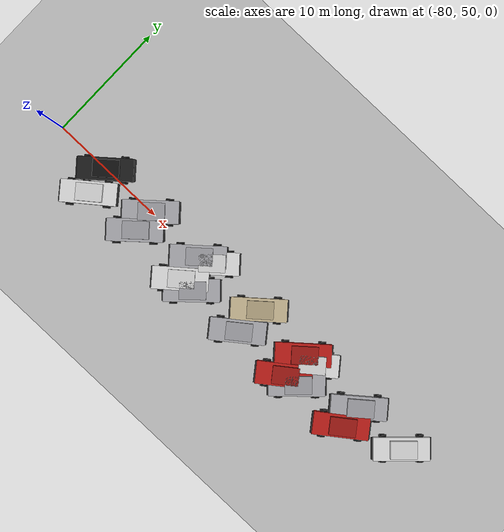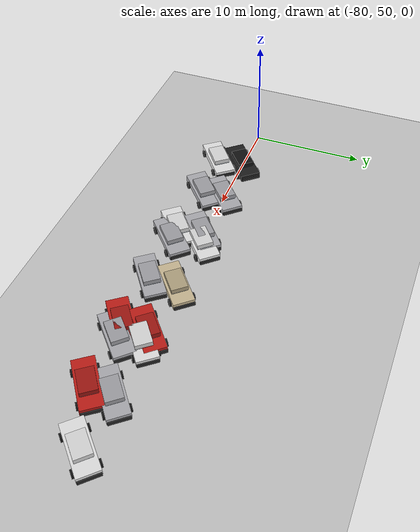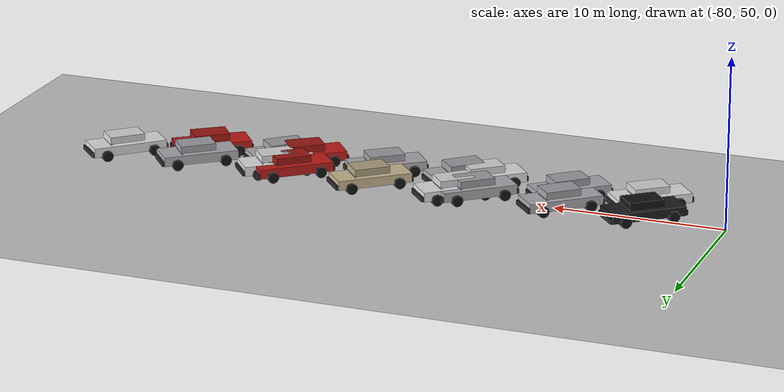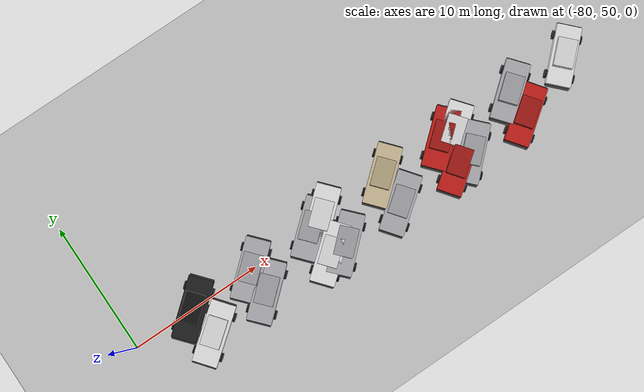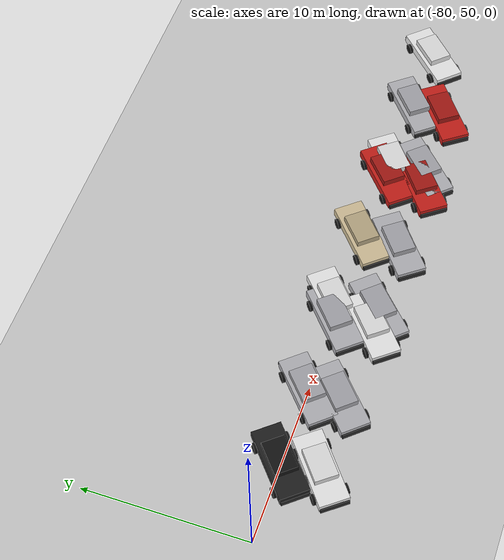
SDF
<sdf version="1.6">
 <world name="parking_lot">
  <model name="ground_plane">
   <static>true</static>
   <link name="link">
    <collision name="collision">
     <geometry><plane><normal>0 0 1</normal><size>400 300</size></plane></geometry>
     <surface><friction><ode><mu>0.8</mu><mu2>0.8</mu2></ode></friction></surface>
    </collision>
    <visual name="visual">
     <cast_shadows>false</cast_shadows>
     <geometry><plane><normal>0 0 1</normal><size>400 300</size></plane></geometry>
     <material>
      <script><uri>file://media/materials/scripts/gazebo.material</uri><name>Gazebo/Grey</name></script>
      <ambient>0.28 0.28 0.27 1</ambient>
      <diffuse>0.32 0.32 0.30 1</diffuse>
      <specular>0.01 0.01 0.01 1</specular>
     </material>
    </visual>
   </link>
  </model>
  <model name="car_0000">
   <static>true</static>
   <pose>-74.930 47.763 0 0 0 0.6667</pose>
   <link name="body">
    <visual name="body_vis">
     <pose>0 0 0.55 0 0 0</pose>
     <geometry><box><size>4.45 1.80 0.55</size></box></geometry>
     <material>
      <ambient>0.15 0.15 0.15 1</ambient>
      <diffuse>0.92 0.92 0.92 1</diffuse>
      <specular>0.4 0.4 0.4 1</specular>
     </material>
    </visual>
    <visual name="roof_vis">
     <pose>0.10 0 1.12 0 0 0</pose>
     <geometry><box><size>2.10 1.40 0.40</size></box></geometry>
     <material>
      <ambient>0.10 0.10 0.10 1</ambient>
      <diffuse>0.88 0.88 0.88 1</diffuse>
      <specular>0.5 0.5 0.5 1</specular>
     </material>
    </visual>
    <visual name="glass_f">
     <pose>1.02 0 0.95 0 -0.45 0</pose>
     <geometry><box><size>0.05 1.35 0.38</size></box></geometry>
     <material><diffuse>0.50 0.60 0.70 0.6</diffuse></material>
    </visual>
    <visual name="bumper_f">
     <pose>2.28 0 0.42 0 0 0</pose>
     <geometry><box><size>0.12 1.72 0.28</size></box></geometry>
     <material><diffuse>0.18 0.18 0.18 1</diffuse></material>
    </visual>
    <visual name="bumper_r">
     <pose>-2.28 0 0.42 0 0 0</pose>
     <geometry><box><size>0.12 1.72 0.28</size></box></geometry>
     <material><diffuse>0.18 0.18 0.18 1</diffuse></material>
    </visual>
    <visual name="wfl">
     <pose>1.45 0.85 0.32 1.5708 0 0</pose>
     <geometry><cylinder><radius>0.32</radius><length>0.44</length></cylinder></geometry>
     <material><diffuse>0.08 0.08 0.08 1</diffuse></material>
    </visual>
    <visual name="wfr">
     <pose>1.45 -0.85 0.32 1.5708 0 0</pose>
     <geometry><cylinder><radius>0.32</radius><length>0.44</length></cylinder></geometry>
     <material><diffuse>0.08 0.08 0.08 1</diffuse></material>
    </visual>
    <visual name="wrl">
     <pose>-1.45 0.85 0.32 1.5708 0 0</pose>
     <geometry><cylinder><radius>0.32</radius><length>0.44</length></cylinder></geometry>
     <material><diffuse>0.08 0.08 0.08 1</diffuse></material>
    </visual>
    <visual name="wrr">
     <pose>-1.45 -0.85 0.32 1.5708 0 0</pose>
     <geometry><cylinder><radius>0.32</radius><length>0.44</length></cylinder></geometry>
     <material><diffuse>0.08 0.08 0.08 1</diffuse></material>
    </visual>
    <collision name="col">
     <pose>0 0 0.55 0 0 0</pose>
     <geometry><box><size>4.45 1.80 1.30</size></box></geometry>
    </collision>
   </link>
  </model>
  <model name="car_0001">
   <static>true</static>
   <pose>-70.288 48.118 0 0 0 0.7228</pose>
   <link name="body">
    <visual name="body_vis">
     <pose>0 0 0.55 0 0 0</pose>
     <geometry><box><size>4.45 1.80 0.55</size></box></geometry>
     <material>
      <ambient>0.15 0.15 0.15 1</ambient>
      <diffuse>0.70 0.70 0.72 1</diffuse>
      <specular>0.4 0.4 0.4 1</specular>
     </material>
    </visual>
    <visual name="roof_vis">
     <pose>0.10 0 1.12 0 0 0</pose>
     <geometry><box><size>2.10 1.40 0.40</size></box></geometry>
     <material>
      <ambient>0.10 0.10 0.10 1</ambient>
      <diffuse>0.65 0.65 0.67 1</diffuse>
      <specular>0.5 0.5 0.5 1</specular>
     </material>
    </visual>
    <visual name="glass_f">
     <pose>1.02 0 0.95 0 -0.45 0</pose>
     <geometry><box><size>0.05 1.35 0.38</size></box></geometry>
     <material><diffuse>0.50 0.60 0.70 0.6</diffuse></material>
    </visual>
    <visual name="bumper_f">
     <pose>2.28 0 0.42 0 0 0</pose>
     <geometry><box><size>0.12 1.72 0.28</size></box></geometry>
     <material><diffuse>0.18 0.18 0.18 1</diffuse></material>
    </visual>
    <visual name="bumper_r">
     <pose>-2.28 0 0.42 0 0 0</pose>
     <geometry><box><size>0.12 1.72 0.28</size></box></geometry>
     <material><diffuse>0.18 0.18 0.18 1</diffuse></material>
    </visual>
    <visual name="wfl">
     <pose>1.45 0.85 0.32 1.5708 0 0</pose>
     <geometry><cylinder><radius>0.32</radius><length>0.44</length></cylinder></geometry>
     <material><diffuse>0.08 0.08 0.08 1</diffuse></material>
    </visual>
    <visual name="wfr">
     <pose>1.45 -0.85 0.32 1.5708 0 0</pose>
     <geometry><cylinder><radius>0.32</radius><length>0.44</length></cylinder></geometry>
     <material><diffuse>0.08 0.08 0.08 1</diffuse></material>
    </visual>
    <visual name="wrl">
     <pose>-1.45 0.85 0.32 1.5708 0 0</pose>
     <geometry><cylinder><radius>0.32</radius><length>0.44</length></cylinder></geometry>
     <material><diffuse>0.08 0.08 0.08 1</diffuse></material>
    </visual>
    <visual name="wrr">
     <pose>-1.45 -0.85 0.32 1.5708 0 0</pose>
     <geometry><cylinder><radius>0.32</radius><length>0.44</length></cylinder></geometry>
     <material><diffuse>0.08 0.08 0.08 1</diffuse></material>
    </visual>
    <collision name="col">
     <pose>0 0 0.55 0 0 0</pose>
     <geometry><box><size>4.45 1.80 1.30</size></box></geometry>
    </collision>
   </link>
  </model>
  <model name="car_0002">
   <static>true</static>
   <pose>-65.104 47.793 0 0 0 0.6872</pose>
   <link name="body">
    <visual name="body_vis">
     <pose>0 0 0.55 0 0 0</pose>
     <geometry><box><size>4.45 1.80 0.55</size></box></geometry>
     <material>
      <ambient>0.15 0.15 0.15 1</ambient>
      <diffuse>0.92 0.92 0.92 1</diffuse>
      <specular>0.4 0.4 0.4 1</specular>
     </material>
    </visual>
    <visual name="roof_vis">
     <pose>0.10 0 1.12 0 0 0</pose>
     <geometry><box><size>2.10 1.40 0.40</size></box></geometry>
     <material>
      <ambient>0.10 0.10 0.10 1</ambient>
      <diffuse>0.88 0.88 0.88 1</diffuse>
      <specular>0.5 0.5 0.5 1</specular>
     </material>
    </visual>
    <visual name="glass_f">
     <pose>1.02 0 0.95 0 -0.45 0</pose>
     <geometry><box><size>0.05 1.35 0.38</size></box></geometry>
     <material><diffuse>0.50 0.60 0.70 0.6</diffuse></material>
    </visual>
    <visual name="bumper_f">
     <pose>2.28 0 0.42 0 0 0</pose>
     <geometry><box><size>0.12 1.72 0.28</size></box></geometry>
     <material><diffuse>0.18 0.18 0.18 1</diffuse></material>
    </visual>
    <visual name="bumper_r">
     <pose>-2.28 0 0.42 0 0 0</pose>
     <geometry><box><size>0.12 1.72 0.28</size></box></geometry>
     <material><diffuse>0.18 0.18 0.18 1</diffuse></material>
    </visual>
    <visual name="wfl">
     <pose>1.45 0.85 0.32 1.5708 0 0</pose>
     <geometry><cylinder><radius>0.32</radius><length>0.44</length></cylinder></geometry>
     <material><diffuse>0.08 0.08 0.08 1</diffuse></material>
    </visual>
    <visual name="wfr">
     <pose>1.45 -0.85 0.32 1.5708 0 0</pose>
     <geometry><cylinder><radius>0.32</radius><length>0.44</length></cylinder></geometry>
     <material><diffuse>0.08 0.08 0.08 1</diffuse></material>
    </visual>
    <visual name="wrl">
     <pose>-1.45 0.85 0.32 1.5708 0 0</pose>
     <geometry><cylinder><radius>0.32</radius><length>0.44</length></cylinder></geometry>
     <material><diffuse>0.08 0.08 0.08 1</diffuse></material>
    </visual>
    <visual name="wrr">
     <pose>-1.45 -0.85 0.32 1.5708 0 0</pose>
     <geometry><cylinder><radius>0.32</radius><length>0.44</length></cylinder></geometry>
     <material><diffuse>0.08 0.08 0.08 1</diffuse></material>
    </visual>
    <collision name="col">
     <pose>0 0 0.55 0 0 0</pose>
     <geometry><box><size>4.45 1.80 1.30</size></box></geometry>
    </collision>
   </link>
  </model>
  <model name="car_0003">
   <static>true</static>
   <pose>-75.235 50.009 0 0 0 0.6989</pose>
   <link name="body">
    <visual name="body_vis">
     <pose>0 0 0.55 0 0 0</pose>
     <geometry><box><size>4.45 1.80 0.55</size></box></geometry>
     <material>
      <ambient>0.15 0.15 0.15 1</ambient>
      <diffuse>0.12 0.12 0.12 1</diffuse>
      <specular>0.4 0.4 0.4 1</specular>
     </material>
    </visual>
    <visual name="roof_vis">
     <pose>0.10 0 1.12 0 0 0</pose>
     <geometry><box><size>2.10 1.40 0.40</size></box></geometry>
     <material>
      <ambient>0.10 0.10 0.10 1</ambient>
      <diffuse>0.08 0.08 0.08 1</diffuse>
      <specular>0.5 0.5 0.5 1</specular>
     </material>
    </visual>
    <visual name="glass_f">
     <pose>1.02 0 0.95 0 -0.45 0</pose>
     <geometry><box><size>0.05 1.35 0.38</size></box></geometry>
     <material><diffuse>0.50 0.60 0.70 0.6</diffuse></material>
    </visual>
    <visual name="bumper_f">
     <pose>2.28 0 0.42 0 0 0</pose>
     <geometry><box><size>0.12 1.72 0.28</size></box></geometry>
     <material><diffuse>0.18 0.18 0.18 1</diffuse></material>
    </visual>
    <visual name="bumper_r">
     <pose>-2.28 0 0.42 0 0 0</pose>
     <geometry><box><size>0.12 1.72 0.28</size></box></geometry>
     <material><diffuse>0.18 0.18 0.18 1</diffuse></material>
    </visual>
    <visual name="wfl">
     <pose>1.45 0.85 0.32 1.5708 0 0</pose>
     <geometry><cylinder><radius>0.32</radius><length>0.44</length></cylinder></geometry>
     <material><diffuse>0.08 0.08 0.08 1</diffuse></material>
    </visual>
    <visual name="wfr">
     <pose>1.45 -0.85 0.32 1.5708 0 0</pose>
     <geometry><cylinder><radius>0.32</radius><length>0.44</length></cylinder></geometry>
     <material><diffuse>0.08 0.08 0.08 1</diffuse></material>
    </visual>
    <visual name="wrl">
     <pose>-1.45 0.85 0.32 1.5708 0 0</pose>
     <geometry><cylinder><radius>0.32</radius><length>0.44</length></cylinder></geometry>
     <material><diffuse>0.08 0.08 0.08 1</diffuse></material>
    </visual>
    <visual name="wrr">
     <pose>-1.45 -0.85 0.32 1.5708 0 0</pose>
     <geometry><cylinder><radius>0.32</radius><length>0.44</length></cylinder></geometry>
     <material><diffuse>0.08 0.08 0.08 1</diffuse></material>
    </visual>
    <collision name="col">
     <pose>0 0 0.55 0 0 0</pose>
     <geometry><box><size>4.45 1.80 1.30</size></box></geometry>
    </collision>
   </link>
  </model>
  <model name="car_0004">
   <static>true</static>
   <pose>-70.387 49.999 0 0 0 0.7191</pose>
   <link name="body">
    <visual name="body_vis">
     <pose>0 0 0.55 0 0 0</pose>
     <geometry><box><size>4.45 1.80 0.55</size></box></geometry>
     <material>
      <ambient>0.15 0.15 0.15 1</ambient>
      <diffuse>0.70 0.70 0.72 1</diffuse>
      <specular>0.4 0.4 0.4 1</specular>
     </material>
    </visual>
    <visual name="roof_vis">
     <pose>0.10 0 1.12 0 0 0</pose>
     <geometry><box><size>2.10 1.40 0.40</size></box></geometry>
     <material>
      <ambient>0.10 0.10 0.10 1</ambient>
      <diffuse>0.65 0.65 0.67 1</diffuse>
      <specular>0.5 0.5 0.5 1</specular>
     </material>
    </visual>
    <visual name="glass_f">
     <pose>1.02 0 0.95 0 -0.45 0</pose>
     <geometry><box><size>0.05 1.35 0.38</size></box></geometry>
     <material><diffuse>0.50 0.60 0.70 0.6</diffuse></material>
    </visual>
    <visual name="bumper_f">
     <pose>2.28 0 0.42 0 0 0</pose>
     <geometry><box><size>0.12 1.72 0.28</size></box></geometry>
     <material><diffuse>0.18 0.18 0.18 1</diffuse></material>
    </visual>
    <visual name="bumper_r">
     <pose>-2.28 0 0.42 0 0 0</pose>
     <geometry><box><size>0.12 1.72 0.28</size></box></geometry>
     <material><diffuse>0.18 0.18 0.18 1</diffuse></material>
    </visual>
    <visual name="wfl">
     <pose>1.45 0.85 0.32 1.5708 0 0</pose>
     <geometry><cylinder><radius>0.32</radius><length>0.44</length></cylinder></geometry>
     <material><diffuse>0.08 0.08 0.08 1</diffuse></material>
    </visual>
    <visual name="wfr">
     <pose>1.45 -0.85 0.32 1.5708 0 0</pose>
     <geometry><cylinder><radius>0.32</radius><length>0.44</length></cylinder></geometry>
     <material><diffuse>0.08 0.08 0.08 1</diffuse></material>
    </visual>
    <visual name="wrl">
     <pose>-1.45 0.85 0.32 1.5708 0 0</pose>
     <geometry><cylinder><radius>0.32</radius><length>0.44</length></cylinder></geometry>
     <material><diffuse>0.08 0.08 0.08 1</diffuse></material>
    </visual>
    <visual name="wrr">
     <pose>-1.45 -0.85 0.32 1.5708 0 0</pose>
     <geometry><cylinder><radius>0.32</radius><length>0.44</length></cylinder></geometry>
     <material><diffuse>0.08 0.08 0.08 1</diffuse></material>
    </visual>
    <collision name="col">
     <pose>0 0 0.55 0 0 0</pose>
     <geometry><box><size>4.45 1.80 1.30</size></box></geometry>
    </collision>
   </link>
  </model>
  <model name="car_0005">
   <static>true</static>
   <pose>-65.278 50.010 0 0 0 0.7106</pose>
   <link name="body">
    <visual name="body_vis">
     <pose>0 0 0.55 0 0 0</pose>
     <geometry><box><size>4.45 1.80 0.55</size></box></geometry>
     <material>
      <ambient>0.15 0.15 0.15 1</ambient>
      <diffuse>0.70 0.70 0.72 1</diffuse>
      <specular>0.4 0.4 0.4 1</specular>
     </material>
    </visual>
    <visual name="roof_vis">
     <pose>0.10 0 1.12 0 0 0</pose>
     <geometry><box><size>2.10 1.40 0.40</size></box></geometry>
     <material>
      <ambient>0.10 0.10 0.10 1</ambient>
      <diffuse>0.65 0.65 0.67 1</diffuse>
      <specular>0.5 0.5 0.5 1</specular>
     </material>
    </visual>
    <visual name="glass_f">
     <pose>1.02 0 0.95 0 -0.45 0</pose>
     <geometry><box><size>0.05 1.35 0.38</size></box></geometry>
     <material><diffuse>0.50 0.60 0.70 0.6</diffuse></material>
    </visual>
    <visual name="bumper_f">
     <pose>2.28 0 0.42 0 0 0</pose>
     <geometry><box><size>0.12 1.72 0.28</size></box></geometry>
     <material><diffuse>0.18 0.18 0.18 1</diffuse></material>
    </visual>
    <visual name="bumper_r">
     <pose>-2.28 0 0.42 0 0 0</pose>
     <geometry><box><size>0.12 1.72 0.28</size></box></geometry>
     <material><diffuse>0.18 0.18 0.18 1</diffuse></material>
    </visual>
    <visual name="wfl">
     <pose>1.45 0.85 0.32 1.5708 0 0</pose>
     <geometry><cylinder><radius>0.32</radius><length>0.44</length></cylinder></geometry>
     <material><diffuse>0.08 0.08 0.08 1</diffuse></material>
    </visual>
    <visual name="wfr">
     <pose>1.45 -0.85 0.32 1.5708 0 0</pose>
     <geometry><cylinder><radius>0.32</radius><length>0.44</length></cylinder></geometry>
     <material><diffuse>0.08 0.08 0.08 1</diffuse></material>
    </visual>
    <visual name="wrl">
     <pose>-1.45 0.85 0.32 1.5708 0 0</pose>
     <geometry><cylinder><radius>0.32</radius><length>0.44</length></cylinder></geometry>
     <material><diffuse>0.08 0.08 0.08 1</diffuse></material>
    </visual>
    <visual name="wrr">
     <pose>-1.45 -0.85 0.32 1.5708 0 0</pose>
     <geometry><cylinder><radius>0.32</radius><length>0.44</length></cylinder></geometry>
     <material><diffuse>0.08 0.08 0.08 1</diffuse></material>
    </visual>
    <collision name="col">
     <pose>0 0 0.55 0 0 0</pose>
     <geometry><box><size>4.45 1.80 1.30</size></box></geometry>
    </collision>
   </link>
  </model>
  <model name="car_0006">
   <static>true</static>
   <pose>-63.845 47.753 0 0 0 0.7408</pose>
   <link name="body">
    <visual name="body_vis">
     <pose>0 0 0.55 0 0 0</pose>
     <geometry><box><size>4.45 1.80 0.55</size></box></geometry>
     <material>
      <ambient>0.15 0.15 0.15 1</ambient>
      <diffuse>0.70 0.70 0.72 1</diffuse>
      <specular>0.4 0.4 0.4 1</specular>
     </material>
    </visual>
    <visual name="roof_vis">
     <pose>0.10 0 1.12 0 0 0</pose>
     <geometry><box><size>2.10 1.40 0.40</size></box></geometry>
     <material>
      <ambient>0.10 0.10 0.10 1</ambient>
      <diffuse>0.65 0.65 0.67 1</diffuse>
      <specular>0.5 0.5 0.5 1</specular>
     </material>
    </visual>
    <visual name="glass_f">
     <pose>1.02 0 0.95 0 -0.45 0</pose>
     <geometry><box><size>0.05 1.35 0.38</size></box></geometry>
     <material><diffuse>0.50 0.60 0.70 0.6</diffuse></material>
    </visual>
    <visual name="bumper_f">
     <pose>2.28 0 0.42 0 0 0</pose>
     <geometry><box><size>0.12 1.72 0.28</size></box></geometry>
     <material><diffuse>0.18 0.18 0.18 1</diffuse></material>
    </visual>
    <visual name="bumper_r">
     <pose>-2.28 0 0.42 0 0 0</pose>
     <geometry><box><size>0.12 1.72 0.28</size></box></geometry>
     <material><diffuse>0.18 0.18 0.18 1</diffuse></material>
    </visual>
    <visual name="wfl">
     <pose>1.45 0.85 0.32 1.5708 0 0</pose>
     <geometry><cylinder><radius>0.32</radius><length>0.44</length></cylinder></geometry>
     <material><diffuse>0.08 0.08 0.08 1</diffuse></material>
    </visual>
    <visual name="wfr">
     <pose>1.45 -0.85 0.32 1.5708 0 0</pose>
     <geometry><cylinder><radius>0.32</radius><length>0.44</length></cylinder></geometry>
     <material><diffuse>0.08 0.08 0.08 1</diffuse></material>
    </visual>
    <visual name="wrl">
     <pose>-1.45 0.85 0.32 1.5708 0 0</pose>
     <geometry><cylinder><radius>0.32</radius><length>0.44</length></cylinder></geometry>
     <material><diffuse>0.08 0.08 0.08 1</diffuse></material>
    </visual>
    <visual name="wrr">
     <pose>-1.45 -0.85 0.32 1.5708 0 0</pose>
     <geometry><cylinder><radius>0.32</radius><length>0.44</length></cylinder></geometry>
     <material><diffuse>0.08 0.08 0.08 1</diffuse></material>
    </visual>
    <collision name="col">
     <pose>0 0 0.55 0 0 0</pose>
     <geometry><box><size>4.45 1.80 1.30</size></box></geometry>
    </collision>
   </link>
  </model>
  <model name="car_0007">
   <static>true</static>
   <pose>-59.051 47.920 0 0 0 0.6500</pose>
   <link name="body">
    <visual name="body_vis">
     <pose>0 0 0.55 0 0 0</pose>
     <geometry><box><size>4.45 1.80 0.55</size></box></geometry>
     <material>
      <ambient>0.15 0.15 0.15 1</ambient>
      <diffuse>0.70 0.70 0.72 1</diffuse>
      <specular>0.4 0.4 0.4 1</specular>
     </material>
    </visual>
    <visual name="roof_vis">
     <pose>0.10 0 1.12 0 0 0</pose>
     <geometry><box><size>2.10 1.40 0.40</size></box></geometry>
     <material>
      <ambient>0.10 0.10 0.10 1</ambient>
      <diffuse>0.65 0.65 0.67 1</diffuse>
      <specular>0.5 0.5 0.5 1</specular>
     </material>
    </visual>
    <visual name="glass_f">
     <pose>1.02 0 0.95 0 -0.45 0</pose>
     <geometry><box><size>0.05 1.35 0.38</size></box></geometry>
     <material><diffuse>0.50 0.60 0.70 0.6</diffuse></material>
    </visual>
    <visual name="bumper_f">
     <pose>2.28 0 0.42 0 0 0</pose>
     <geometry><box><size>0.12 1.72 0.28</size></box></geometry>
     <material><diffuse>0.18 0.18 0.18 1</diffuse></material>
    </visual>
    <visual name="bumper_r">
     <pose>-2.28 0 0.42 0 0 0</pose>
     <geometry><box><size>0.12 1.72 0.28</size></box></geometry>
     <material><diffuse>0.18 0.18 0.18 1</diffuse></material>
    </visual>
    <visual name="wfl">
     <pose>1.45 0.85 0.32 1.5708 0 0</pose>
     <geometry><cylinder><radius>0.32</radius><length>0.44</length></cylinder></geometry>
     <material><diffuse>0.08 0.08 0.08 1</diffuse></material>
    </visual>
    <visual name="wfr">
     <pose>1.45 -0.85 0.32 1.5708 0 0</pose>
     <geometry><cylinder><radius>0.32</radius><length>0.44</length></cylinder></geometry>
     <material><diffuse>0.08 0.08 0.08 1</diffuse></material>
    </visual>
    <visual name="wrl">
     <pose>-1.45 0.85 0.32 1.5708 0 0</pose>
     <geometry><cylinder><radius>0.32</radius><length>0.44</length></cylinder></geometry>
     <material><diffuse>0.08 0.08 0.08 1</diffuse></material>
    </visual>
    <visual name="wrr">
     <pose>-1.45 -0.85 0.32 1.5708 0 0</pose>
     <geometry><cylinder><radius>0.32</radius><length>0.44</length></cylinder></geometry>
     <material><diffuse>0.08 0.08 0.08 1</diffuse></material>
    </visual>
    <collision name="col">
     <pose>0 0 0.55 0 0 0</pose>
     <geometry><box><size>4.45 1.80 1.30</size></box></geometry>
    </collision>
   </link>
  </model>
  <model name="car_0008">
   <static>true</static>
   <pose>-54.071 47.918 0 0 0 0.6413</pose>
   <link name="body">
    <visual name="body_vis">
     <pose>0 0 0.55 0 0 0</pose>
     <geometry><box><size>4.45 1.80 0.55</size></box></geometry>
     <material>
      <ambient>0.15 0.15 0.15 1</ambient>
      <diffuse>0.78 0.12 0.10 1</diffuse>
      <specular>0.4 0.4 0.4 1</specular>
     </material>
    </visual>
    <visual name="roof_vis">
     <pose>0.10 0 1.12 0 0 0</pose>
     <geometry><box><size>2.10 1.40 0.40</size></box></geometry>
     <material>
      <ambient>0.10 0.10 0.10 1</ambient>
      <diffuse>0.65 0.10 0.08 1</diffuse>
      <specular>0.5 0.5 0.5 1</specular>
     </material>
    </visual>
    <visual name="glass_f">
     <pose>1.02 0 0.95 0 -0.45 0</pose>
     <geometry><box><size>0.05 1.35 0.38</size></box></geometry>
     <material><diffuse>0.50 0.60 0.70 0.6</diffuse></material>
    </visual>
    <visual name="bumper_f">
     <pose>2.28 0 0.42 0 0 0</pose>
     <geometry><box><size>0.12 1.72 0.28</size></box></geometry>
     <material><diffuse>0.18 0.18 0.18 1</diffuse></material>
    </visual>
    <visual name="bumper_r">
     <pose>-2.28 0 0.42 0 0 0</pose>
     <geometry><box><size>0.12 1.72 0.28</size></box></geometry>
     <material><diffuse>0.18 0.18 0.18 1</diffuse></material>
    </visual>
    <visual name="wfl">
     <pose>1.45 0.85 0.32 1.5708 0 0</pose>
     <geometry><cylinder><radius>0.32</radius><length>0.44</length></cylinder></geometry>
     <material><diffuse>0.08 0.08 0.08 1</diffuse></material>
    </visual>
    <visual name="wfr">
     <pose>1.45 -0.85 0.32 1.5708 0 0</pose>
     <geometry><cylinder><radius>0.32</radius><length>0.44</length></cylinder></geometry>
     <material><diffuse>0.08 0.08 0.08 1</diffuse></material>
    </visual>
    <visual name="wrl">
     <pose>-1.45 0.85 0.32 1.5708 0 0</pose>
     <geometry><cylinder><radius>0.32</radius><length>0.44</length></cylinder></geometry>
     <material><diffuse>0.08 0.08 0.08 1</diffuse></material>
    </visual>
    <visual name="wrr">
     <pose>-1.45 -0.85 0.32 1.5708 0 0</pose>
     <geometry><cylinder><radius>0.32</radius><length>0.44</length></cylinder></geometry>
     <material><diffuse>0.08 0.08 0.08 1</diffuse></material>
    </visual>
    <collision name="col">
     <pose>0 0 0.55 0 0 0</pose>
     <geometry><box><size>4.45 1.80 1.30</size></box></geometry>
    </collision>
   </link>
  </model>
  <model name="car_0009">
   <static>true</static>
   <pose>-64.202 50.324 0 0 0 0.7126</pose>
   <link name="body">
    <visual name="body_vis">
     <pose>0 0 0.55 0 0 0</pose>
     <geometry><box><size>4.45 1.80 0.55</size></box></geometry>
     <material>
      <ambient>0.15 0.15 0.15 1</ambient>
      <diffuse>0.92 0.92 0.92 1</diffuse>
      <specular>0.4 0.4 0.4 1</specular>
     </material>
    </visual>
    <visual name="roof_vis">
     <pose>0.10 0 1.12 0 0 0</pose>
     <geometry><box><size>2.10 1.40 0.40</size></box></geometry>
     <material>
      <ambient>0.10 0.10 0.10 1</ambient>
      <diffuse>0.88 0.88 0.88 1</diffuse>
      <specular>0.5 0.5 0.5 1</specular>
     </material>
    </visual>
    <visual name="glass_f">
     <pose>1.02 0 0.95 0 -0.45 0</pose>
     <geometry><box><size>0.05 1.35 0.38</size></box></geometry>
     <material><diffuse>0.50 0.60 0.70 0.6</diffuse></material>
    </visual>
    <visual name="bumper_f">
     <pose>2.28 0 0.42 0 0 0</pose>
     <geometry><box><size>0.12 1.72 0.28</size></box></geometry>
     <material><diffuse>0.18 0.18 0.18 1</diffuse></material>
    </visual>
    <visual name="bumper_r">
     <pose>-2.28 0 0.42 0 0 0</pose>
     <geometry><box><size>0.12 1.72 0.28</size></box></geometry>
     <material><diffuse>0.18 0.18 0.18 1</diffuse></material>
    </visual>
    <visual name="wfl">
     <pose>1.45 0.85 0.32 1.5708 0 0</pose>
     <geometry><cylinder><radius>0.32</radius><length>0.44</length></cylinder></geometry>
     <material><diffuse>0.08 0.08 0.08 1</diffuse></material>
    </visual>
    <visual name="wfr">
     <pose>1.45 -0.85 0.32 1.5708 0 0</pose>
     <geometry><cylinder><radius>0.32</radius><length>0.44</length></cylinder></geometry>
     <material><diffuse>0.08 0.08 0.08 1</diffuse></material>
    </visual>
    <visual name="wrl">
     <pose>-1.45 0.85 0.32 1.5708 0 0</pose>
     <geometry><cylinder><radius>0.32</radius><length>0.44</length></cylinder></geometry>
     <material><diffuse>0.08 0.08 0.08 1</diffuse></material>
    </visual>
    <visual name="wrr">
     <pose>-1.45 -0.85 0.32 1.5708 0 0</pose>
     <geometry><cylinder><radius>0.32</radius><length>0.44</length></cylinder></geometry>
     <material><diffuse>0.08 0.08 0.08 1</diffuse></material>
    </visual>
    <collision name="col">
     <pose>0 0 0.55 0 0 0</pose>
     <geometry><box><size>4.45 1.80 1.30</size></box></geometry>
    </collision>
   </link>
  </model>
  <model name="car_0010">
   <static>true</static>
   <pose>-58.996 50.265 0 0 0 0.7032</pose>
   <link name="body">
    <visual name="body_vis">
     <pose>0 0 0.55 0 0 0</pose>
     <geometry><box><size>4.45 1.80 0.55</size></box></geometry>
     <material>
      <ambient>0.15 0.15 0.15 1</ambient>
      <diffuse>0.82 0.75 0.60 1</diffuse>
      <specular>0.4 0.4 0.4 1</specular>
     </material>
    </visual>
    <visual name="roof_vis">
     <pose>0.10 0 1.12 0 0 0</pose>
     <geometry><box><size>2.10 1.40 0.40</size></box></geometry>
     <material>
      <ambient>0.10 0.10 0.10 1</ambient>
      <diffuse>0.72 0.66 0.52 1</diffuse>
      <specular>0.5 0.5 0.5 1</specular>
     </material>
    </visual>
    <visual name="glass_f">
     <pose>1.02 0 0.95 0 -0.45 0</pose>
     <geometry><box><size>0.05 1.35 0.38</size></box></geometry>
     <material><diffuse>0.50 0.60 0.70 0.6</diffuse></material>
    </visual>
    <visual name="bumper_f">
     <pose>2.28 0 0.42 0 0 0</pose>
     <geometry><box><size>0.12 1.72 0.28</size></box></geometry>
     <material><diffuse>0.18 0.18 0.18 1</diffuse></material>
    </visual>
    <visual name="bumper_r">
     <pose>-2.28 0 0.42 0 0 0</pose>
     <geometry><box><size>0.12 1.72 0.28</size></box></geometry>
     <material><diffuse>0.18 0.18 0.18 1</diffuse></material>
    </visual>
    <visual name="wfl">
     <pose>1.45 0.85 0.32 1.5708 0 0</pose>
     <geometry><cylinder><radius>0.32</radius><length>0.44</length></cylinder></geometry>
     <material><diffuse>0.08 0.08 0.08 1</diffuse></material>
    </visual>
    <visual name="wfr">
     <pose>1.45 -0.85 0.32 1.5708 0 0</pose>
     <geometry><cylinder><radius>0.32</radius><length>0.44</length></cylinder></geometry>
     <material><diffuse>0.08 0.08 0.08 1</diffuse></material>
    </visual>
    <visual name="wrl">
     <pose>-1.45 0.85 0.32 1.5708 0 0</pose>
     <geometry><cylinder><radius>0.32</radius><length>0.44</length></cylinder></geometry>
     <material><diffuse>0.08 0.08 0.08 1</diffuse></material>
    </visual>
    <visual name="wrr">
     <pose>-1.45 -0.85 0.32 1.5708 0 0</pose>
     <geometry><cylinder><radius>0.32</radius><length>0.44</length></cylinder></geometry>
     <material><diffuse>0.08 0.08 0.08 1</diffuse></material>
    </visual>
    <collision name="col">
     <pose>0 0 0.55 0 0 0</pose>
     <geometry><box><size>4.45 1.80 1.30</size></box></geometry>
    </collision>
   </link>
  </model>
  <model name="car_0011">
   <static>true</static>
   <pose>-54.063 50.089 0 0 0 0.7054</pose>
   <link name="body">
    <visual name="body_vis">
     <pose>0 0 0.55 0 0 0</pose>
     <geometry><box><size>4.45 1.80 0.55</size></box></geometry>
     <material>
      <ambient>0.15 0.15 0.15 1</ambient>
      <diffuse>0.78 0.12 0.10 1</diffuse>
      <specular>0.4 0.4 0.4 1</specular>
     </material>
    </visual>
    <visual name="roof_vis">
     <pose>0.10 0 1.12 0 0 0</pose>
     <geometry><box><size>2.10 1.40 0.40</size></box></geometry>
     <material>
      <ambient>0.10 0.10 0.10 1</ambient>
      <diffuse>0.65 0.10 0.08 1</diffuse>
      <specular>0.5 0.5 0.5 1</specular>
     </material>
    </visual>
    <visual name="glass_f">
     <pose>1.02 0 0.95 0 -0.45 0</pose>
     <geometry><box><size>0.05 1.35 0.38</size></box></geometry>
     <material><diffuse>0.50 0.60 0.70 0.6</diffuse></material>
    </visual>
    <visual name="bumper_f">
     <pose>2.28 0 0.42 0 0 0</pose>
     <geometry><box><size>0.12 1.72 0.28</size></box></geometry>
     <material><diffuse>0.18 0.18 0.18 1</diffuse></material>
    </visual>
    <visual name="bumper_r">
     <pose>-2.28 0 0.42 0 0 0</pose>
     <geometry><box><size>0.12 1.72 0.28</size></box></geometry>
     <material><diffuse>0.18 0.18 0.18 1</diffuse></material>
    </visual>
    <visual name="wfl">
     <pose>1.45 0.85 0.32 1.5708 0 0</pose>
     <geometry><cylinder><radius>0.32</radius><length>0.44</length></cylinder></geometry>
     <material><diffuse>0.08 0.08 0.08 1</diffuse></material>
    </visual>
    <visual name="wfr">
     <pose>1.45 -0.85 0.32 1.5708 0 0</pose>
     <geometry><cylinder><radius>0.32</radius><length>0.44</length></cylinder></geometry>
     <material><diffuse>0.08 0.08 0.08 1</diffuse></material>
    </visual>
    <visual name="wrl">
     <pose>-1.45 0.85 0.32 1.5708 0 0</pose>
     <geometry><cylinder><radius>0.32</radius><length>0.44</length></cylinder></geometry>
     <material><diffuse>0.08 0.08 0.08 1</diffuse></material>
    </visual>
    <visual name="wrr">
     <pose>-1.45 -0.85 0.32 1.5708 0 0</pose>
     <geometry><cylinder><radius>0.32</radius><length>0.44</length></cylinder></geometry>
     <material><diffuse>0.08 0.08 0.08 1</diffuse></material>
    </visual>
    <collision name="col">
     <pose>0 0 0.55 0 0 0</pose>
     <geometry><box><size>4.45 1.80 1.30</size></box></geometry>
    </collision>
   </link>
  </model>
  <model name="car_0012">
   <static>true</static>
   <pose>-52.835 48.059 0 0 0 0.7486</pose>
   <link name="body">
    <visual name="body_vis">
     <pose>0 0 0.55 0 0 0</pose>
     <geometry><box><size>4.45 1.80 0.55</size></box></geometry>
     <material>
      <ambient>0.15 0.15 0.15 1</ambient>
      <diffuse>0.70 0.70 0.72 1</diffuse>
      <specular>0.4 0.4 0.4 1</specular>
     </material>
    </visual>
    <visual name="roof_vis">
     <pose>0.10 0 1.12 0 0 0</pose>
     <geometry><box><size>2.10 1.40 0.40</size></box></geometry>
     <material>
      <ambient>0.10 0.10 0.10 1</ambient>
      <diffuse>0.65 0.65 0.67 1</diffuse>
      <specular>0.5 0.5 0.5 1</specular>
     </material>
    </visual>
    <visual name="glass_f">
     <pose>1.02 0 0.95 0 -0.45 0</pose>
     <geometry><box><size>0.05 1.35 0.38</size></box></geometry>
     <material><diffuse>0.50 0.60 0.70 0.6</diffuse></material>
    </visual>
    <visual name="bumper_f">
     <pose>2.28 0 0.42 0 0 0</pose>
     <geometry><box><size>0.12 1.72 0.28</size></box></geometry>
     <material><diffuse>0.18 0.18 0.18 1</diffuse></material>
    </visual>
    <visual name="bumper_r">
     <pose>-2.28 0 0.42 0 0 0</pose>
     <geometry><box><size>0.12 1.72 0.28</size></box></geometry>
     <material><diffuse>0.18 0.18 0.18 1</diffuse></material>
    </visual>
    <visual name="wfl">
     <pose>1.45 0.85 0.32 1.5708 0 0</pose>
     <geometry><cylinder><radius>0.32</radius><length>0.44</length></cylinder></geometry>
     <material><diffuse>0.08 0.08 0.08 1</diffuse></material>
    </visual>
    <visual name="wfr">
     <pose>1.45 -0.85 0.32 1.5708 0 0</pose>
     <geometry><cylinder><radius>0.32</radius><length>0.44</length></cylinder></geometry>
     <material><diffuse>0.08 0.08 0.08 1</diffuse></material>
    </visual>
    <visual name="wrl">
     <pose>-1.45 0.85 0.32 1.5708 0 0</pose>
     <geometry><cylinder><radius>0.32</radius><length>0.44</length></cylinder></geometry>
     <material><diffuse>0.08 0.08 0.08 1</diffuse></material>
    </visual>
    <visual name="wrr">
     <pose>-1.45 -0.85 0.32 1.5708 0 0</pose>
     <geometry><cylinder><radius>0.32</radius><length>0.44</length></cylinder></geometry>
     <material><diffuse>0.08 0.08 0.08 1</diffuse></material>
    </visual>
    <collision name="col">
     <pose>0 0 0.55 0 0 0</pose>
     <geometry><box><size>4.45 1.80 1.30</size></box></geometry>
    </collision>
   </link>
  </model>
  <model name="car_0013">
   <static>true</static>
   <pose>-48.111 48.102 0 0 0 0.6347</pose>
   <link name="body">
    <visual name="body_vis">
     <pose>0 0 0.55 0 0 0</pose>
     <geometry><box><size>4.45 1.80 0.55</size></box></geometry>
     <material>
      <ambient>0.15 0.15 0.15 1</ambient>
      <diffuse>0.78 0.12 0.10 1</diffuse>
      <specular>0.4 0.4 0.4 1</specular>
     </material>
    </visual>
    <visual name="roof_vis">
     <pose>0.10 0 1.12 0 0 0</pose>
     <geometry><box><size>2.10 1.40 0.40</size></box></geometry>
     <material>
      <ambient>0.10 0.10 0.10 1</ambient>
      <diffuse>0.65 0.10 0.08 1</diffuse>
      <specular>0.5 0.5 0.5 1</specular>
     </material>
    </visual>
    <visual name="glass_f">
     <pose>1.02 0 0.95 0 -0.45 0</pose>
     <geometry><box><size>0.05 1.35 0.38</size></box></geometry>
     <material><diffuse>0.50 0.60 0.70 0.6</diffuse></material>
    </visual>
    <visual name="bumper_f">
     <pose>2.28 0 0.42 0 0 0</pose>
     <geometry><box><size>0.12 1.72 0.28</size></box></geometry>
     <material><diffuse>0.18 0.18 0.18 1</diffuse></material>
    </visual>
    <visual name="bumper_r">
     <pose>-2.28 0 0.42 0 0 0</pose>
     <geometry><box><size>0.12 1.72 0.28</size></box></geometry>
     <material><diffuse>0.18 0.18 0.18 1</diffuse></material>
    </visual>
    <visual name="wfl">
     <pose>1.45 0.85 0.32 1.5708 0 0</pose>
     <geometry><cylinder><radius>0.32</radius><length>0.44</length></cylinder></geometry>
     <material><diffuse>0.08 0.08 0.08 1</diffuse></material>
    </visual>
    <visual name="wfr">
     <pose>1.45 -0.85 0.32 1.5708 0 0</pose>
     <geometry><cylinder><radius>0.32</radius><length>0.44</length></cylinder></geometry>
     <material><diffuse>0.08 0.08 0.08 1</diffuse></material>
    </visual>
    <visual name="wrl">
     <pose>-1.45 0.85 0.32 1.5708 0 0</pose>
     <geometry><cylinder><radius>0.32</radius><length>0.44</length></cylinder></geometry>
     <material><diffuse>0.08 0.08 0.08 1</diffuse></material>
    </visual>
    <visual name="wrr">
     <pose>-1.45 -0.85 0.32 1.5708 0 0</pose>
     <geometry><cylinder><radius>0.32</radius><length>0.44</length></cylinder></geometry>
     <material><diffuse>0.08 0.08 0.08 1</diffuse></material>
    </visual>
    <collision name="col">
     <pose>0 0 0.55 0 0 0</pose>
     <geometry><box><size>4.45 1.80 1.30</size></box></geometry>
    </collision>
   </link>
  </model>
  <model name="car_0015">
   <static>true</static>
   <pose>-53.134 49.951 0 0 0 0.6671</pose>
   <link name="body">
    <visual name="body_vis">
     <pose>0 0 0.55 0 0 0</pose>
     <geometry><box><size>4.45 1.80 0.55</size></box></geometry>
     <material>
      <ambient>0.15 0.15 0.15 1</ambient>
      <diffuse>0.92 0.92 0.92 1</diffuse>
      <specular>0.4 0.4 0.4 1</specular>
     </material>
    </visual>
    <visual name="roof_vis">
     <pose>0.10 0 1.12 0 0 0</pose>
     <geometry><box><size>2.10 1.40 0.40</size></box></geometry>
     <material>
      <ambient>0.10 0.10 0.10 1</ambient>
      <diffuse>0.88 0.88 0.88 1</diffuse>
      <specular>0.5 0.5 0.5 1</specular>
     </material>
    </visual>
    <visual name="glass_f">
     <pose>1.02 0 0.95 0 -0.45 0</pose>
     <geometry><box><size>0.05 1.35 0.38</size></box></geometry>
     <material><diffuse>0.50 0.60 0.70 0.6</diffuse></material>
    </visual>
    <visual name="bumper_f">
     <pose>2.28 0 0.42 0 0 0</pose>
     <geometry><box><size>0.12 1.72 0.28</size></box></geometry>
     <material><diffuse>0.18 0.18 0.18 1</diffuse></material>
    </visual>
    <visual name="bumper_r">
     <pose>-2.28 0 0.42 0 0 0</pose>
     <geometry><box><size>0.12 1.72 0.28</size></box></geometry>
     <material><diffuse>0.18 0.18 0.18 1</diffuse></material>
    </visual>
    <visual name="wfl">
     <pose>1.45 0.85 0.32 1.5708 0 0</pose>
     <geometry><cylinder><radius>0.32</radius><length>0.44</length></cylinder></geometry>
     <material><diffuse>0.08 0.08 0.08 1</diffuse></material>
    </visual>
    <visual name="wfr">
     <pose>1.45 -0.85 0.32 1.5708 0 0</pose>
     <geometry><cylinder><radius>0.32</radius><length>0.44</length></cylinder></geometry>
     <material><diffuse>0.08 0.08 0.08 1</diffuse></material>
    </visual>
    <visual name="wrl">
     <pose>-1.45 0.85 0.32 1.5708 0 0</pose>
     <geometry><cylinder><radius>0.32</radius><length>0.44</length></cylinder></geometry>
     <material><diffuse>0.08 0.08 0.08 1</diffuse></material>
    </visual>
    <visual name="wrr">
     <pose>-1.45 -0.85 0.32 1.5708 0 0</pose>
     <geometry><cylinder><radius>0.32</radius><length>0.44</length></cylinder></geometry>
     <material><diffuse>0.08 0.08 0.08 1</diffuse></material>
    </visual>
    <collision name="col">
     <pose>0 0 0.55 0 0 0</pose>
     <geometry><box><size>4.45 1.80 1.30</size></box></geometry>
    </collision>
   </link>
  </model>
  <model name="car_0016">
   <static>true</static>
   <pose>-48.082 50.082 0 0 0 0.6800</pose>
   <link name="body">
    <visual name="body_vis">
     <pose>0 0 0.55 0 0 0</pose>
     <geometry><box><size>4.45 1.80 0.55</size></box></geometry>
     <material>
      <ambient>0.15 0.15 0.15 1</ambient>
      <diffuse>0.70 0.70 0.72 1</diffuse>
      <specular>0.4 0.4 0.4 1</specular>
     </material>
    </visual>
    <visual name="roof_vis">
     <pose>0.10 0 1.12 0 0 0</pose>
     <geometry><box><size>2.10 1.40 0.40</size></box></geometry>
     <material>
      <ambient>0.10 0.10 0.10 1</ambient>
      <diffuse>0.65 0.65 0.67 1</diffuse>
      <specular>0.5 0.5 0.5 1</specular>
     </material>
    </visual>
    <visual name="glass_f">
     <pose>1.02 0 0.95 0 -0.45 0</pose>
     <geometry><box><size>0.05 1.35 0.38</size></box></geometry>
     <material><diffuse>0.50 0.60 0.70 0.6</diffuse></material>
    </visual>
    <visual name="bumper_f">
     <pose>2.28 0 0.42 0 0 0</pose>
     <geometry><box><size>0.12 1.72 0.28</size></box></geometry>
     <material><diffuse>0.18 0.18 0.18 1</diffuse></material>
    </visual>
    <visual name="bumper_r">
     <pose>-2.28 0 0.42 0 0 0</pose>
     <geometry><box><size>0.12 1.72 0.28</size></box></geometry>
     <material><diffuse>0.18 0.18 0.18 1</diffuse></material>
    </visual>
    <visual name="wfl">
     <pose>1.45 0.85 0.32 1.5708 0 0</pose>
     <geometry><cylinder><radius>0.32</radius><length>0.44</length></cylinder></geometry>
     <material><diffuse>0.08 0.08 0.08 1</diffuse></material>
    </visual>
    <visual name="wfr">
     <pose>1.45 -0.85 0.32 1.5708 0 0</pose>
     <geometry><cylinder><radius>0.32</radius><length>0.44</length></cylinder></geometry>
     <material><diffuse>0.08 0.08 0.08 1</diffuse></material>
    </visual>
    <visual name="wrl">
     <pose>-1.45 0.85 0.32 1.5708 0 0</pose>
     <geometry><cylinder><radius>0.32</radius><length>0.44</length></cylinder></geometry>
     <material><diffuse>0.08 0.08 0.08 1</diffuse></material>
    </visual>
    <visual name="wrr">
     <pose>-1.45 -0.85 0.32 1.5708 0 0</pose>
     <geometry><cylinder><radius>0.32</radius><length>0.44</length></cylinder></geometry>
     <material><diffuse>0.08 0.08 0.08 1</diffuse></material>
    </visual>
    <collision name="col">
     <pose>0 0 0.55 0 0 0</pose>
     <geometry><box><size>4.45 1.80 1.30</size></box></geometry>
    </collision>
   </link>
  </model>
  <model name="car_0017">
   <static>true</static>
   <pose>-43.445 50.033 0 0 0 0.7591</pose>
   <link name="body">
    <visual name="body_vis">
     <pose>0 0 0.55 0 0 0</pose>
     <geometry><box><size>4.45 1.80 0.55</size></box></geometry>
     <material>
      <ambient>0.15 0.15 0.15 1</ambient>
      <diffuse>0.92 0.92 0.92 1</diffuse>
      <specular>0.4 0.4 0.4 1</specular>
     </material>
    </visual>
    <visual name="roof_vis">
     <pose>0.10 0 1.12 0 0 0</pose>
     <geometry><box><size>2.10 1.40 0.40</size></box></geometry>
     <material>
      <ambient>0.10 0.10 0.10 1</ambient>
      <diffuse>0.88 0.88 0.88 1</diffuse>
      <specular>0.5 0.5 0.5 1</specular>
     </material>
    </visual>
    <visual name="glass_f">
     <pose>1.02 0 0.95 0 -0.45 0</pose>
     <geometry><box><size>0.05 1.35 0.38</size></box></geometry>
     <material><diffuse>0.50 0.60 0.70 0.6</diffuse></material>
    </visual>
    <visual name="bumper_f">
     <pose>2.28 0 0.42 0 0 0</pose>
     <geometry><box><size>0.12 1.72 0.28</size></box></geometry>
     <material><diffuse>0.18 0.18 0.18 1</diffuse></material>
    </visual>
    <visual name="bumper_r">
     <pose>-2.28 0 0.42 0 0 0</pose>
     <geometry><box><size>0.12 1.72 0.28</size></box></geometry>
     <material><diffuse>0.18 0.18 0.18 1</diffuse></material>
    </visual>
    <visual name="wfl">
     <pose>1.45 0.85 0.32 1.5708 0 0</pose>
     <geometry><cylinder><radius>0.32</radius><length>0.44</length></cylinder></geometry>
     <material><diffuse>0.08 0.08 0.08 1</diffuse></material>
    </visual>
    <visual name="wfr">
     <pose>1.45 -0.85 0.32 1.5708 0 0</pose>
     <geometry><cylinder><radius>0.32</radius><length>0.44</length></cylinder></geometry>
     <material><diffuse>0.08 0.08 0.08 1</diffuse></material>
    </visual>
    <visual name="wrl">
     <pose>-1.45 0.85 0.32 1.5708 0 0</pose>
     <geometry><cylinder><radius>0.32</radius><length>0.44</length></cylinder></geometry>
     <material><diffuse>0.08 0.08 0.08 1</diffuse></material>
    </visual>
    <visual name="wrr">
     <pose>-1.45 -0.85 0.32 1.5708 0 0</pose>
     <geometry><cylinder><radius>0.32</radius><length>0.44</length></cylinder></geometry>
     <material><diffuse>0.08 0.08 0.08 1</diffuse></material>
    </visual>
    <collision name="col">
     <pose>0 0 0.55 0 0 0</pose>
     <geometry><box><size>4.45 1.80 1.30</size></box></geometry>
    </collision>
   </link>
  </model>
 </world>
</sdf>
